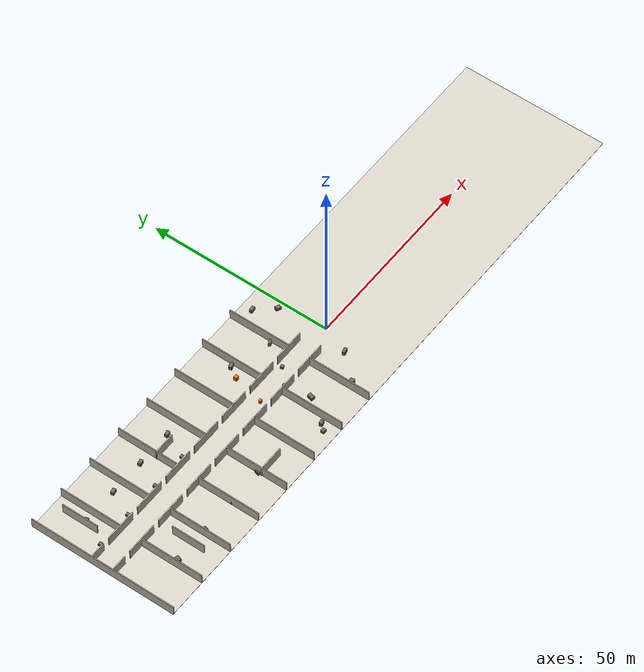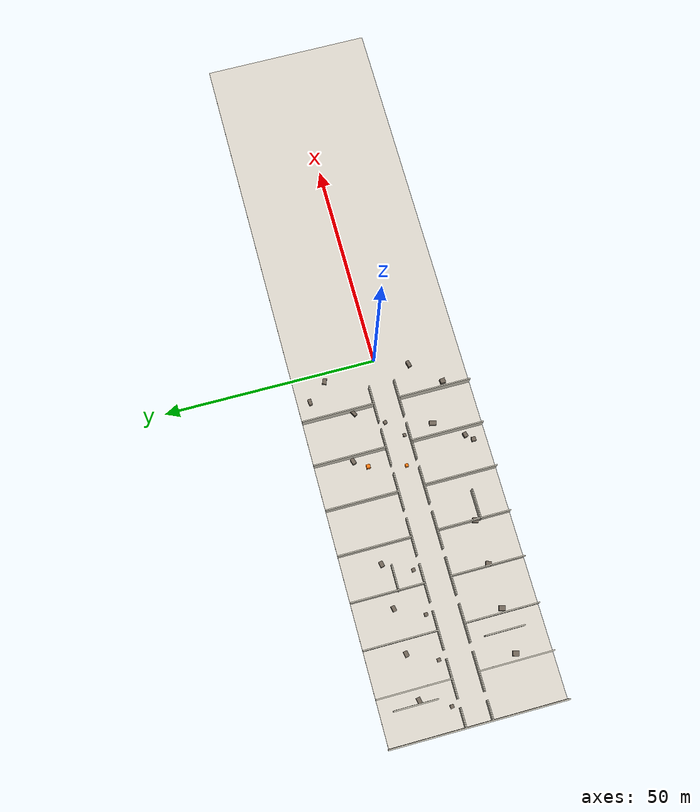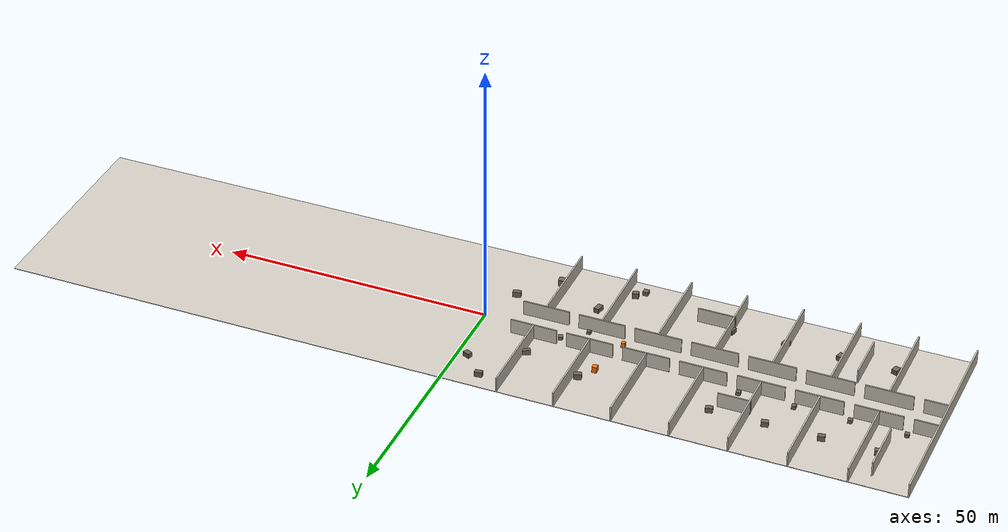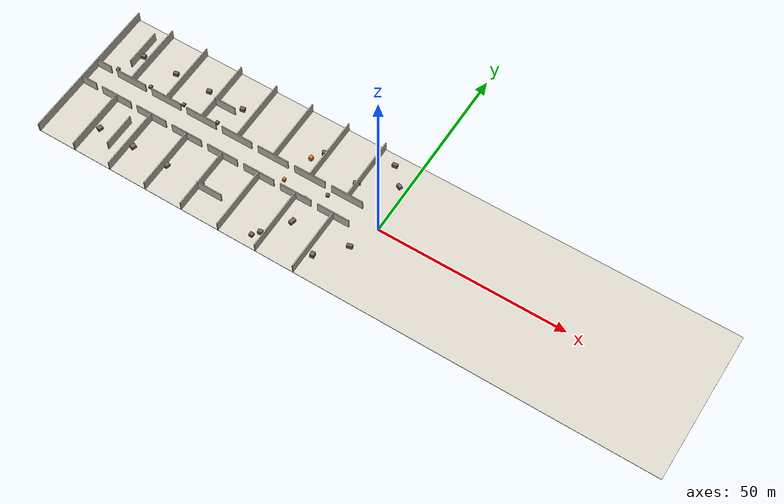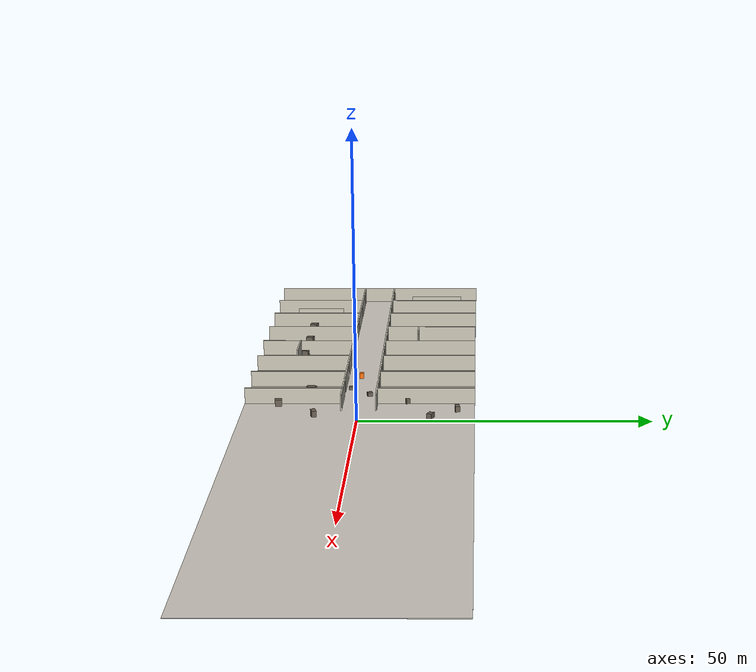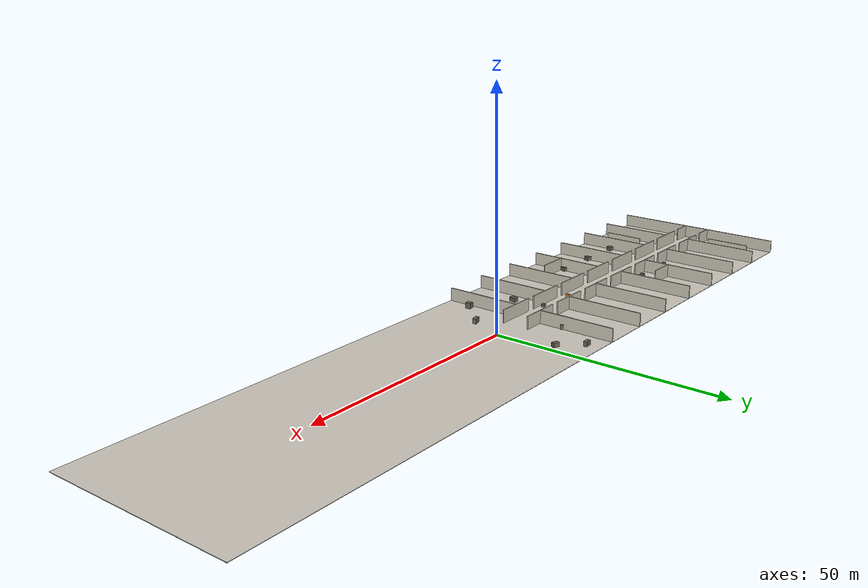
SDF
<sdf version="1.7">
 <world name="rescue_building_xxl">
  <model name="floor">
   <static>true</static>
   <pose>0 0 -0.05 0 0 0.0</pose>
   <link name="link">
    <collision name="col"><geometry><box><size>168.0 40.0 0.1</size></box></geometry></collision>
    <visual name="vis">
     <geometry><box><size>168.0 40.0 0.1</size></box></geometry>
     <material><ambient>0.82 0.8 0.76 1</ambient><diffuse>0.82 0.8 0.76 1</diffuse></material>
    </visual>
   </link>
  </model>
  <model name="outer_wall_west">
   <static>true</static>
   <pose>-84.0 0 1.4 0 0 0.0</pose>
   <link name="link">
    <collision name="col"><geometry><box><size>0.25 40.25 2.8</size></box></geometry></collision>
    <visual name="vis">
     <geometry><box><size>0.25 40.25 2.8</size></box></geometry>
     <material><ambient>0.8 0.78 0.72 1</ambient><diffuse>0.8 0.78 0.72 1</diffuse></material>
    </visual>
   </link>
  </model>
  <model name="corridor_wall_north_0">
   <static>true</static>
   <pose>-81.825 3.0 1.4 0 0 0.0</pose>
   <link name="link">
    <collision name="col"><geometry><box><size>4.349999999999994 0.25 2.8</size></box></geometry></collision>
    <visual name="vis">
     <geometry><box><size>4.349999999999994 0.25 2.8</size></box></geometry>
     <material><ambient>0.8 0.78 0.72 1</ambient><diffuse>0.8 0.78 0.72 1</diffuse></material>
    </visual>
   </link>
  </model>
  <model name="corridor_wall_north_2">
   <static>true</static>
   <pose>-73.5 3.0 1.4 0 0 0.0</pose>
   <link name="link">
    <collision name="col"><geometry><box><size>8.699999999999989 0.25 2.8</size></box></geometry></collision>
    <visual name="vis">
     <geometry><box><size>8.699999999999989 0.25 2.8</size></box></geometry>
     <material><ambient>0.8 0.78 0.72 1</ambient><diffuse>0.8 0.78 0.72 1</diffuse></material>
    </visual>
   </link>
  </model>
  <model name="corridor_wall_north_4">
   <static>true</static>
   <pose>-63.0 3.0 1.4 0 0 0.0</pose>
   <link name="link">
    <collision name="col"><geometry><box><size>8.699999999999996 0.25 2.8</size></box></geometry></collision>
    <visual name="vis">
     <geometry><box><size>8.699999999999996 0.25 2.8</size></box></geometry>
     <material><ambient>0.8 0.78 0.72 1</ambient><diffuse>0.8 0.78 0.72 1</diffuse></material>
    </visual>
   </link>
  </model>
  <model name="corridor_wall_north_6">
   <static>true</static>
   <pose>-52.5 3.0 1.4 0 0 0.0</pose>
   <link name="link">
    <collision name="col"><geometry><box><size>8.700000000000003 0.25 2.8</size></box></geometry></collision>
    <visual name="vis">
     <geometry><box><size>8.700000000000003 0.25 2.8</size></box></geometry>
     <material><ambient>0.8 0.78 0.72 1</ambient><diffuse>0.8 0.78 0.72 1</diffuse></material>
    </visual>
   </link>
  </model>
  <model name="corridor_wall_north_8">
   <static>true</static>
   <pose>-42.0 3.0 1.4 0 0 0.0</pose>
   <link name="link">
    <collision name="col"><geometry><box><size>8.700000000000003 0.25 2.8</size></box></geometry></collision>
    <visual name="vis">
     <geometry><box><size>8.700000000000003 0.25 2.8</size></box></geometry>
     <material><ambient>0.8 0.78 0.72 1</ambient><diffuse>0.8 0.78 0.72 1</diffuse></material>
    </visual>
   </link>
  </model>
  <model name="corridor_wall_north_10">
   <static>true</static>
   <pose>-31.5 3.0 1.4 0 0 0.0</pose>
   <link name="link">
    <collision name="col"><geometry><box><size>8.700000000000003 0.25 2.8</size></box></geometry></collision>
    <visual name="vis">
     <geometry><box><size>8.700000000000003 0.25 2.8</size></box></geometry>
     <material><ambient>0.8 0.78 0.72 1</ambient><diffuse>0.8 0.78 0.72 1</diffuse></material>
    </visual>
   </link>
  </model>
  <model name="corridor_wall_north_12">
   <static>true</static>
   <pose>-21.0 3.0 1.4 0 0 0.0</pose>
   <link name="link">
    <collision name="col"><geometry><box><size>8.700000000000003 0.25 2.8</size></box></geometry></collision>
    <visual name="vis">
     <geometry><box><size>8.700000000000003 0.25 2.8</size></box></geometry>
     <material><ambient>0.8 0.78 0.72 1</ambient><diffuse>0.8 0.78 0.72 1</diffuse></material>
    </visual>
   </link>
  </model>
  <model name="corridor_wall_north_14">
   <static>true</static>
   <pose>-10.5 3.0 1.4 0 0 0.0</pose>
   <link name="link">
    <collision name="col"><geometry><box><size>8.7 0.25 2.8</size></box></geometry></collision>
    <visual name="vis">
     <geometry><box><size>8.7 0.25 2.8</size></box></geometry>
     <material><ambient>0.8 0.78 0.72 1</ambient><diffuse>0.8 0.78 0.72 1</diffuse></material>
    </visual>
   </link>
  </model>
  <model name="corridor_wall_south_0">
   <static>true</static>
   <pose>-81.825 -3.0 1.4 0 0 0.0</pose>
   <link name="link">
    <collision name="col"><geometry><box><size>4.349999999999994 0.25 2.8</size></box></geometry></collision>
    <visual name="vis">
     <geometry><box><size>4.349999999999994 0.25 2.8</size></box></geometry>
     <material><ambient>0.8 0.78 0.72 1</ambient><diffuse>0.8 0.78 0.72 1</diffuse></material>
    </visual>
   </link>
  </model>
  <model name="corridor_wall_south_2">
   <static>true</static>
   <pose>-73.5 -3.0 1.4 0 0 0.0</pose>
   <link name="link">
    <collision name="col"><geometry><box><size>8.699999999999989 0.25 2.8</size></box></geometry></collision>
    <visual name="vis">
     <geometry><box><size>8.699999999999989 0.25 2.8</size></box></geometry>
     <material><ambient>0.8 0.78 0.72 1</ambient><diffuse>0.8 0.78 0.72 1</diffuse></material>
    </visual>
   </link>
  </model>
  <model name="corridor_wall_south_4">
   <static>true</static>
   <pose>-63.0 -3.0 1.4 0 0 0.0</pose>
   <link name="link">
    <collision name="col"><geometry><box><size>8.699999999999996 0.25 2.8</size></box></geometry></collision>
    <visual name="vis">
     <geometry><box><size>8.699999999999996 0.25 2.8</size></box></geometry>
     <material><ambient>0.8 0.78 0.72 1</ambient><diffuse>0.8 0.78 0.72 1</diffuse></material>
    </visual>
   </link>
  </model>
  <model name="corridor_wall_south_6">
   <static>true</static>
   <pose>-52.5 -3.0 1.4 0 0 0.0</pose>
   <link name="link">
    <collision name="col"><geometry><box><size>8.700000000000003 0.25 2.8</size></box></geometry></collision>
    <visual name="vis">
     <geometry><box><size>8.700000000000003 0.25 2.8</size></box></geometry>
     <material><ambient>0.8 0.78 0.72 1</ambient><diffuse>0.8 0.78 0.72 1</diffuse></material>
    </visual>
   </link>
  </model>
  <model name="corridor_wall_south_8">
   <static>true</static>
   <pose>-42.0 -3.0 1.4 0 0 0.0</pose>
   <link name="link">
    <collision name="col"><geometry><box><size>8.700000000000003 0.25 2.8</size></box></geometry></collision>
    <visual name="vis">
     <geometry><box><size>8.700000000000003 0.25 2.8</size></box></geometry>
     <material><ambient>0.8 0.78 0.72 1</ambient><diffuse>0.8 0.78 0.72 1</diffuse></material>
    </visual>
   </link>
  </model>
  <model name="corridor_wall_south_10">
   <static>true</static>
   <pose>-31.5 -3.0 1.4 0 0 0.0</pose>
   <link name="link">
    <collision name="col"><geometry><box><size>8.700000000000003 0.25 2.8</size></box></geometry></collision>
    <visual name="vis">
     <geometry><box><size>8.700000000000003 0.25 2.8</size></box></geometry>
     <material><ambient>0.8 0.78 0.72 1</ambient><diffuse>0.8 0.78 0.72 1</diffuse></material>
    </visual>
   </link>
  </model>
  <model name="corridor_wall_south_12">
   <static>true</static>
   <pose>-21.0 -3.0 1.4 0 0 0.0</pose>
   <link name="link">
    <collision name="col"><geometry><box><size>8.700000000000003 0.25 2.8</size></box></geometry></collision>
    <visual name="vis">
     <geometry><box><size>8.700000000000003 0.25 2.8</size></box></geometry>
     <material><ambient>0.8 0.78 0.72 1</ambient><diffuse>0.8 0.78 0.72 1</diffuse></material>
    </visual>
   </link>
  </model>
  <model name="corridor_wall_south_14">
   <static>true</static>
   <pose>-10.5 -3.0 1.4 0 0 0.0</pose>
   <link name="link">
    <collision name="col"><geometry><box><size>8.7 0.25 2.8</size></box></geometry></collision>
    <visual name="vis">
     <geometry><box><size>8.7 0.25 2.8</size></box></geometry>
     <material><ambient>0.8 0.78 0.72 1</ambient><diffuse>0.8 0.78 0.72 1</diffuse></material>
    </visual>
   </link>
  </model>
  <model name="divider_north_1">
   <static>true</static>
   <pose>-73.5 11.5 1.4 0 0 0.0</pose>
   <link name="link">
    <collision name="col"><geometry><box><size>0.25 17.0 2.8</size></box></geometry></collision>
    <visual name="vis">
     <geometry><box><size>0.25 17.0 2.8</size></box></geometry>
     <material><ambient>0.8 0.78 0.72 1</ambient><diffuse>0.8 0.78 0.72 1</diffuse></material>
    </visual>
   </link>
  </model>
  <model name="divider_south_1">
   <static>true</static>
   <pose>-73.5 -11.5 1.4 0 0 0.0</pose>
   <link name="link">
    <collision name="col"><geometry><box><size>0.25 17.0 2.8</size></box></geometry></collision>
    <visual name="vis">
     <geometry><box><size>0.25 17.0 2.8</size></box></geometry>
     <material><ambient>0.8 0.78 0.72 1</ambient><diffuse>0.8 0.78 0.72 1</diffuse></material>
    </visual>
   </link>
  </model>
  <model name="divider_north_2">
   <static>true</static>
   <pose>-63.0 11.5 1.4 0 0 0.0</pose>
   <link name="link">
    <collision name="col"><geometry><box><size>0.25 17.0 2.8</size></box></geometry></collision>
    <visual name="vis">
     <geometry><box><size>0.25 17.0 2.8</size></box></geometry>
     <material><ambient>0.8 0.78 0.72 1</ambient><diffuse>0.8 0.78 0.72 1</diffuse></material>
    </visual>
   </link>
  </model>
  <model name="divider_south_2">
   <static>true</static>
   <pose>-63.0 -11.5 1.4 0 0 0.0</pose>
   <link name="link">
    <collision name="col"><geometry><box><size>0.25 17.0 2.8</size></box></geometry></collision>
    <visual name="vis">
     <geometry><box><size>0.25 17.0 2.8</size></box></geometry>
     <material><ambient>0.8 0.78 0.72 1</ambient><diffuse>0.8 0.78 0.72 1</diffuse></material>
    </visual>
   </link>
  </model>
  <model name="divider_north_3">
   <static>true</static>
   <pose>-52.5 11.5 1.4 0 0 0.0</pose>
   <link name="link">
    <collision name="col"><geometry><box><size>0.25 17.0 2.8</size></box></geometry></collision>
    <visual name="vis">
     <geometry><box><size>0.25 17.0 2.8</size></box></geometry>
     <material><ambient>0.8 0.78 0.72 1</ambient><diffuse>0.8 0.78 0.72 1</diffuse></material>
    </visual>
   </link>
  </model>
  <model name="divider_south_3">
   <static>true</static>
   <pose>-52.5 -11.5 1.4 0 0 0.0</pose>
   <link name="link">
    <collision name="col"><geometry><box><size>0.25 17.0 2.8</size></box></geometry></collision>
    <visual name="vis">
     <geometry><box><size>0.25 17.0 2.8</size></box></geometry>
     <material><ambient>0.8 0.78 0.72 1</ambient><diffuse>0.8 0.78 0.72 1</diffuse></material>
    </visual>
   </link>
  </model>
  <model name="divider_north_4">
   <static>true</static>
   <pose>-42.0 11.5 1.4 0 0 0.0</pose>
   <link name="link">
    <collision name="col"><geometry><box><size>0.25 17.0 2.8</size></box></geometry></collision>
    <visual name="vis">
     <geometry><box><size>0.25 17.0 2.8</size></box></geometry>
     <material><ambient>0.8 0.78 0.72 1</ambient><diffuse>0.8 0.78 0.72 1</diffuse></material>
    </visual>
   </link>
  </model>
  <model name="divider_south_4">
   <static>true</static>
   <pose>-42.0 -11.5 1.4 0 0 0.0</pose>
   <link name="link">
    <collision name="col"><geometry><box><size>0.25 17.0 2.8</size></box></geometry></collision>
    <visual name="vis">
     <geometry><box><size>0.25 17.0 2.8</size></box></geometry>
     <material><ambient>0.8 0.78 0.72 1</ambient><diffuse>0.8 0.78 0.72 1</diffuse></material>
    </visual>
   </link>
  </model>
  <model name="divider_north_5">
   <static>true</static>
   <pose>-31.5 11.5 1.4 0 0 0.0</pose>
   <link name="link">
    <collision name="col"><geometry><box><size>0.25 17.0 2.8</size></box></geometry></collision>
    <visual name="vis">
     <geometry><box><size>0.25 17.0 2.8</size></box></geometry>
     <material><ambient>0.8 0.78 0.72 1</ambient><diffuse>0.8 0.78 0.72 1</diffuse></material>
    </visual>
   </link>
  </model>
  <model name="divider_south_5">
   <static>true</static>
   <pose>-31.5 -11.5 1.4 0 0 0.0</pose>
   <link name="link">
    <collision name="col"><geometry><box><size>0.25 17.0 2.8</size></box></geometry></collision>
    <visual name="vis">
     <geometry><box><size>0.25 17.0 2.8</size></box></geometry>
     <material><ambient>0.8 0.78 0.72 1</ambient><diffuse>0.8 0.78 0.72 1</diffuse></material>
    </visual>
   </link>
  </model>
  <model name="divider_north_6">
   <static>true</static>
   <pose>-21.0 11.5 1.4 0 0 0.0</pose>
   <link name="link">
    <collision name="col"><geometry><box><size>0.25 17.0 2.8</size></box></geometry></collision>
    <visual name="vis">
     <geometry><box><size>0.25 17.0 2.8</size></box></geometry>
     <material><ambient>0.8 0.78 0.72 1</ambient><diffuse>0.8 0.78 0.72 1</diffuse></material>
    </visual>
   </link>
  </model>
  <model name="divider_south_6">
   <static>true</static>
   <pose>-21.0 -11.5 1.4 0 0 0.0</pose>
   <link name="link">
    <collision name="col"><geometry><box><size>0.25 17.0 2.8</size></box></geometry></collision>
    <visual name="vis">
     <geometry><box><size>0.25 17.0 2.8</size></box></geometry>
     <material><ambient>0.8 0.78 0.72 1</ambient><diffuse>0.8 0.78 0.72 1</diffuse></material>
    </visual>
   </link>
  </model>
  <model name="divider_north_7">
   <static>true</static>
   <pose>-10.5 11.5 1.4 0 0 0.0</pose>
   <link name="link">
    <collision name="col"><geometry><box><size>0.25 17.0 2.8</size></box></geometry></collision>
    <visual name="vis">
     <geometry><box><size>0.25 17.0 2.8</size></box></geometry>
     <material><ambient>0.8 0.78 0.72 1</ambient><diffuse>0.8 0.78 0.72 1</diffuse></material>
    </visual>
   </link>
  </model>
  <model name="divider_south_7">
   <static>true</static>
   <pose>-10.5 -11.5 1.4 0 0 0.0</pose>
   <link name="link">
    <collision name="col"><geometry><box><size>0.25 17.0 2.8</size></box></geometry></collision>
    <visual name="vis">
     <geometry><box><size>0.25 17.0 2.8</size></box></geometry>
     <material><ambient>0.8 0.78 0.72 1</ambient><diffuse>0.8 0.78 0.72 1</diffuse></material>
    </visual>
   </link>
  </model>
  <model name="inner_n1">
   <static>true</static>
   <pose>-76.75 12.0 1.4 0 0 0.0</pose>
   <link name="link">
    <collision name="col"><geometry><box><size>0.25 10.0 2.8</size></box></geometry></collision>
    <visual name="vis">
     <geometry><box><size>0.25 10.0 2.8</size></box></geometry>
     <material><ambient>0.8 0.78 0.72 1</ambient><diffuse>0.8 0.78 0.72 1</diffuse></material>
    </visual>
   </link>
  </model>
  <model name="inner_n4">
   <static>true</static>
   <pose>-49.75 9.0 1.4 0 0 0.0</pose>
   <link name="link">
    <collision name="col"><geometry><box><size>6.0 0.25 2.8</size></box></geometry></collision>
    <visual name="vis">
     <geometry><box><size>6.0 0.25 2.8</size></box></geometry>
     <material><ambient>0.8 0.78 0.72 1</ambient><diffuse>0.8 0.78 0.72 1</diffuse></material>
    </visual>
   </link>
  </model>
  <model name="inner_s2">
   <static>true</static>
   <pose>-66.75 -11.0 1.4 0 0 0.0</pose>
   <link name="link">
    <collision name="col"><geometry><box><size>0.25 9.0 2.8</size></box></geometry></collision>
    <visual name="vis">
     <geometry><box><size>0.25 9.0 2.8</size></box></geometry>
     <material><ambient>0.8 0.78 0.72 1</ambient><diffuse>0.8 0.78 0.72 1</diffuse></material>
    </visual>
   </link>
  </model>
  <model name="inner_s5">
   <static>true</static>
   <pose>-38.75 -13.0 1.4 0 0 0.0</pose>
   <link name="link">
    <collision name="col"><geometry><box><size>7.0 0.25 2.8</size></box></geometry></collision>
    <visual name="vis">
     <geometry><box><size>7.0 0.25 2.8</size></box></geometry>
     <material><ambient>0.8 0.78 0.72 1</ambient><diffuse>0.8 0.78 0.72 1</diffuse></material>
    </visual>
   </link>
  </model>
  <model name="debris_1">
   <static>true</static>
   <pose>-22 11 0.55 0 0 0.3</pose>
   <link name="link">
    <collision name="col"><geometry><box><size>1.4 0.9 1.1</size></box></geometry></collision>
    <visual name="vis">
     <geometry><box><size>1.4 0.9 1.1</size></box></geometry>
     <material><ambient>0.42 0.38 0.33 1</ambient><diffuse>0.42 0.38 0.33 1</diffuse></material>
    </visual>
   </link>
  </model>
  <model name="debris_2">
   <static>true</static>
   <pose>-18 -9 0.45 0 0 -0.2</pose>
   <link name="link">
    <collision name="col"><geometry><box><size>1.0 1.6 0.9</size></box></geometry></collision>
    <visual name="vis">
     <geometry><box><size>1.0 1.6 0.9</size></box></geometry>
     <material><ambient>0.42 0.38 0.33 1</ambient><diffuse>0.42 0.38 0.33 1</diffuse></material>
    </visual>
   </link>
  </model>
  <model name="debris_3">
   <static>true</static>
   <pose>-11 8 0.5 0 0 0.5</pose>
   <link name="link">
    <collision name="col"><geometry><box><size>1.8 0.7 1.0</size></box></geometry></collision>
    <visual name="vis">
     <geometry><box><size>1.8 0.7 1.0</size></box></geometry>
     <material><ambient>0.42 0.38 0.33 1</ambient><diffuse>0.42 0.38 0.33 1</diffuse></material>
    </visual>
   </link>
  </model>
  <model name="debris_4">
   <static>true</static>
   <pose>-9 -14 0.6 0 0 0.1</pose>
   <link name="link">
    <collision name="col"><geometry><box><size>1.1 1.2 1.2</size></box></geometry></collision>
    <visual name="vis">
     <geometry><box><size>1.1 1.2 1.2</size></box></geometry>
     <material><ambient>0.42 0.38 0.33 1</ambient><diffuse>0.42 0.38 0.33 1</diffuse></material>
    </visual>
   </link>
  </model>
  <model name="debris_5">
   <static>true</static>
   <pose>-2 12.5 0.45 0 0 -0.4</pose>
   <link name="link">
    <collision name="col"><geometry><box><size>1.3 0.9 0.9</size></box></geometry></collision>
    <visual name="vis">
     <geometry><box><size>1.3 0.9 0.9</size></box></geometry>
     <material><ambient>0.42 0.38 0.33 1</ambient><diffuse>0.42 0.38 0.33 1</diffuse></material>
    </visual>
   </link>
  </model>
  <model name="debris_6">
   <static>true</static>
   <pose>-3 -7.5 0.55 0 0 0.25</pose>
   <link name="link">
    <collision name="col"><geometry><box><size>1.5 0.8 1.1</size></box></geometry></collision>
    <visual name="vis">
     <geometry><box><size>1.5 0.8 1.1</size></box></geometry>
     <material><ambient>0.42 0.38 0.33 1</ambient><diffuse>0.42 0.38 0.33 1</diffuse></material>
    </visual>
   </link>
  </model>
  <model name="debris_13">
   <static>true</static>
   <pose>-24 -17 0.4 0 0 0.0</pose>
   <link name="link">
    <collision name="col"><geometry><box><size>1.0 1.0 0.8</size></box></geometry></collision>
    <visual name="vis">
     <geometry><box><size>1.0 1.0 0.8</size></box></geometry>
     <material><ambient>0.42 0.38 0.33 1</ambient><diffuse>0.42 0.38 0.33 1</diffuse></material>
    </visual>
   </link>
  </model>
  <model name="debris_14">
   <static>true</static>
   <pose>-15 1.5 0.35 0 0 0.3</pose>
   <link name="link">
    <collision name="col"><geometry><box><size>0.8 0.8 0.7</size></box></geometry></collision>
    <visual name="vis">
     <geometry><box><size>0.8 0.8 0.7</size></box></geometry>
     <material><ambient>0.42 0.38 0.33 1</ambient><diffuse>0.42 0.38 0.33 1</diffuse></material>
    </visual>
   </link>
  </model>
  <model name="debris_16">
   <static>true</static>
   <pose>-6 17 0.5 0 0 0.1</pose>
   <link name="link">
    <collision name="col"><geometry><box><size>1.4 0.8 1.0</size></box></geometry></collision>
    <visual name="vis">
     <geometry><box><size>1.4 0.8 1.0</size></box></geometry>
     <material><ambient>0.42 0.38 0.33 1</ambient><diffuse>0.42 0.38 0.33 1</diffuse></material>
    </visual>
   </link>
  </model>
  <model name="debris_19">
   <static>true</static>
   <pose>-19 -2.0 0.3 0 0 0.0</pose>
   <link name="link">
    <collision name="col"><geometry><box><size>0.7 0.7 0.6</size></box></geometry></collision>
    <visual name="vis">
     <geometry><box><size>0.7 0.7 0.6</size></box></geometry>
     <material><ambient>0.42 0.38 0.33 1</ambient><diffuse>0.42 0.38 0.33 1</diffuse></material>
    </visual>
   </link>
  </model>
  <model name="debris_21">
   <static>true</static>
   <pose>-76 11 0.5 0 0 0.2</pose>
   <link name="link">
    <collision name="col"><geometry><box><size>1.3 0.9 1.0</size></box></geometry></collision>
    <visual name="vis">
     <geometry><box><size>1.3 0.9 1.0</size></box></geometry>
     <material><ambient>0.42 0.38 0.33 1</ambient><diffuse>0.42 0.38 0.33 1</diffuse></material>
    </visual>
   </link>
  </model>
  <model name="debris_22">
   <static>true</static>
   <pose>-72 -12 0.45 0 0 -0.3</pose>
   <link name="link">
    <collision name="col"><geometry><box><size>1.1 1.3 0.9</size></box></geometry></collision>
    <visual name="vis">
     <geometry><box><size>1.1 1.3 0.9</size></box></geometry>
     <material><ambient>0.42 0.38 0.33 1</ambient><diffuse>0.42 0.38 0.33 1</diffuse></material>
    </visual>
   </link>
  </model>
  <model name="debris_23">
   <static>true</static>
   <pose>-79 4.5 0.35 0 0 0.1</pose>
   <link name="link">
    <collision name="col"><geometry><box><size>0.8 0.8 0.7</size></box></geometry></collision>
    <visual name="vis">
     <geometry><box><size>0.8 0.8 0.7</size></box></geometry>
     <material><ambient>0.42 0.38 0.33 1</ambient><diffuse>0.42 0.38 0.33 1</diffuse></material>
    </visual>
   </link>
  </model>
  <model name="debris_24">
   <static>true</static>
   <pose>-66 11 0.5 0 0 0.2</pose>
   <link name="link">
    <collision name="col"><geometry><box><size>1.3 0.9 1.0</size></box></geometry></collision>
    <visual name="vis">
     <geometry><box><size>1.3 0.9 1.0</size></box></geometry>
     <material><ambient>0.42 0.38 0.33 1</ambient><diffuse>0.42 0.38 0.33 1</diffuse></material>
    </visual>
   </link>
  </model>
  <model name="debris_25">
   <static>true</static>
   <pose>-62 -12 0.45 0 0 -0.3</pose>
   <link name="link">
    <collision name="col"><geometry><box><size>1.1 1.3 0.9</size></box></geometry></collision>
    <visual name="vis">
     <geometry><box><size>1.1 1.3 0.9</size></box></geometry>
     <material><ambient>0.42 0.38 0.33 1</ambient><diffuse>0.42 0.38 0.33 1</diffuse></material>
    </visual>
   </link>
  </model>
  <model name="debris_26">
   <static>true</static>
   <pose>-69 4.5 0.35 0 0 0.1</pose>
   <link name="link">
    <collision name="col"><geometry><box><size>0.8 0.8 0.7</size></box></geometry></collision>
    <visual name="vis">
     <geometry><box><size>0.8 0.8 0.7</size></box></geometry>
     <material><ambient>0.42 0.38 0.33 1</ambient><diffuse>0.42 0.38 0.33 1</diffuse></material>
    </visual>
   </link>
  </model>
  <model name="debris_27">
   <static>true</static>
   <pose>-56 11 0.5 0 0 0.2</pose>
   <link name="link">
    <collision name="col"><geometry><box><size>1.3 0.9 1.0</size></box></geometry></collision>
    <visual name="vis">
     <geometry><box><size>1.3 0.9 1.0</size></box></geometry>
     <material><ambient>0.42 0.38 0.33 1</ambient><diffuse>0.42 0.38 0.33 1</diffuse></material>
    </visual>
   </link>
  </model>
  <model name="debris_28">
   <static>true</static>
   <pose>-52 -12 0.45 0 0 -0.3</pose>
   <link name="link">
    <collision name="col"><geometry><box><size>1.1 1.3 0.9</size></box></geometry></collision>
    <visual name="vis">
     <geometry><box><size>1.1 1.3 0.9</size></box></geometry>
     <material><ambient>0.42 0.38 0.33 1</ambient><diffuse>0.42 0.38 0.33 1</diffuse></material>
    </visual>
   </link>
  </model>
  <model name="debris_29">
   <static>true</static>
   <pose>-59 4.5 0.35 0 0 0.1</pose>
   <link name="link">
    <collision name="col"><geometry><box><size>0.8 0.8 0.7</size></box></geometry></collision>
    <visual name="vis">
     <geometry><box><size>0.8 0.8 0.7</size></box></geometry>
     <material><ambient>0.42 0.38 0.33 1</ambient><diffuse>0.42 0.38 0.33 1</diffuse></material>
    </visual>
   </link>
  </model>
  <model name="debris_30">
   <static>true</static>
   <pose>-46 11 0.5 0 0 0.2</pose>
   <link name="link">
    <collision name="col"><geometry><box><size>1.3 0.9 1.0</size></box></geometry></collision>
    <visual name="vis">
     <geometry><box><size>1.3 0.9 1.0</size></box></geometry>
     <material><ambient>0.42 0.38 0.33 1</ambient><diffuse>0.42 0.38 0.33 1</diffuse></material>
    </visual>
   </link>
  </model>
  <model name="debris_31">
   <static>true</static>
   <pose>-42 -12 0.45 0 0 -0.3</pose>
   <link name="link">
    <collision name="col"><geometry><box><size>1.1 1.3 0.9</size></box></geometry></collision>
    <visual name="vis">
     <geometry><box><size>1.1 1.3 0.9</size></box></geometry>
     <material><ambient>0.42 0.38 0.33 1</ambient><diffuse>0.42 0.38 0.33 1</diffuse></material>
    </visual>
   </link>
  </model>
  <model name="debris_32">
   <static>true</static>
   <pose>-49 4.5 0.35 0 0 0.1</pose>
   <link name="link">
    <collision name="col"><geometry><box><size>0.8 0.8 0.7</size></box></geometry></collision>
    <visual name="vis">
     <geometry><box><size>0.8 0.8 0.7</size></box></geometry>
     <material><ambient>0.42 0.38 0.33 1</ambient><diffuse>0.42 0.38 0.33 1</diffuse></material>
    </visual>
   </link>
  </model>
  <model name="debris_occluder">
   <static>true</static>
   <pose>-22.6 -15.4 0.55 0 0 0.2</pose>
   <link name="link">
    <collision name="col"><geometry><box><size>1.2 0.9 1.1</size></box></geometry></collision>
    <visual name="vis">
     <geometry><box><size>1.2 0.9 1.1</size></box></geometry>
     <material><ambient>0.42 0.38 0.33 1</ambient><diffuse>0.42 0.38 0.33 1</diffuse></material>
    </visual>
   </link>
  </model>
  <model name="fire_source_1">
   <static>true</static>
   <pose>-24.0 8.0 0.6 0 0 0</pose>
   <link name="link">
    <visual name="vis">
     <geometry><box><size>0.9 0.9 1.2</size></box></geometry>
     <material>
      <ambient>1.0 0.45 0.05 1</ambient>
      <diffuse>1.0 0.45 0.05 1</diffuse>
      <emissive>1.0 0.5 0.1 1</emissive>
     </material>
     <plugin filename="gz-sim-thermal-system" name="gz::sim::systems::Thermal">
      <temperature>600.0</temperature>
     </plugin>
    </visual>
   </link>
  </model>
  <model name="fire_source_4">
   <static>true</static>
   <pose>-26.0 -0.5 0.6 0 0 0</pose>
   <link name="link">
    <visual name="vis">
     <geometry><box><size>0.7 0.7 1.0</size></box></geometry>
     <material>
      <ambient>1.0 0.45 0.05 1</ambient>
      <diffuse>1.0 0.45 0.05 1</diffuse>
      <emissive>1.0 0.5 0.1 1</emissive>
     </material>
     <plugin filename="gz-sim-thermal-system" name="gz::sim::systems::Thermal">
      <temperature>600.0</temperature>
     </plugin>
    </visual>
   </link>
  </model>
 </world>
</sdf>
